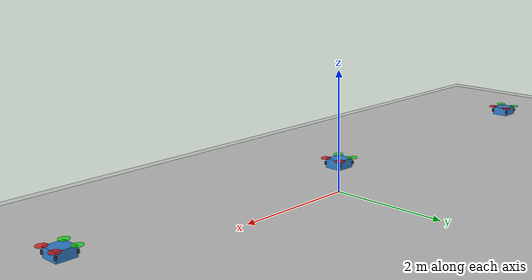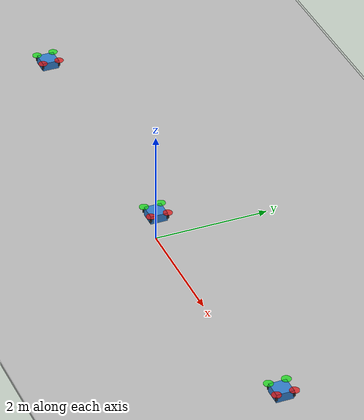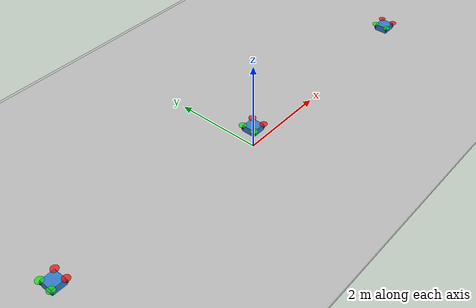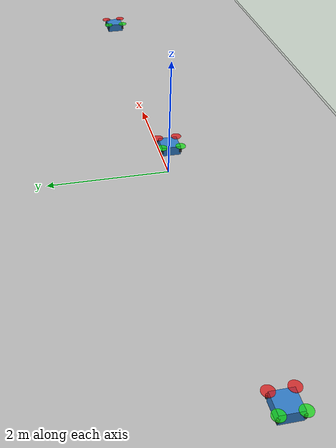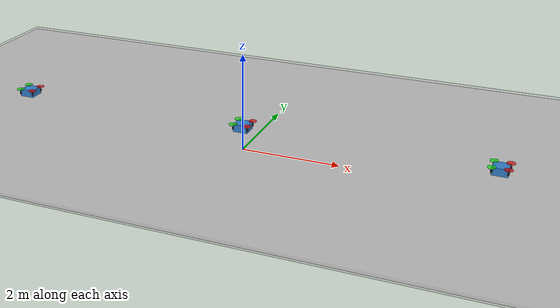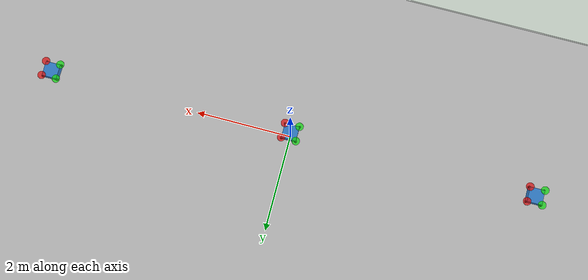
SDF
<?xml version="1.0"?>
<sdf version="1.8">
  <world name="uav_swarm_world">

    <!-- Physics configuration -->
    <physics name="1ms" type="ode">
      <max_step_size>0.001</max_step_size>
      <real_time_factor>1.0</real_time_factor>
      <real_time_update_rate>1000</real_time_update_rate>
    </physics>

    <!-- Required plugins for Ignition Gazebo -->
    <plugin
      filename="ignition-gazebo-physics-system"
      name="ignition::gazebo::systems::Physics">
    </plugin>

    <plugin
      filename="ignition-gazebo-user-commands-system"
      name="ignition::gazebo::systems::UserCommands">
    </plugin>

    <plugin
      filename="ignition-gazebo-scene-broadcaster-system"
      name="ignition::gazebo::systems::SceneBroadcaster">
    </plugin>

    <!-- REST Bridge Plugin for communication with Rust -->
    <plugin
      filename="libRestBridgePlugin.so"
      name="gazebo_plugins::RestBridgePlugin">
      <rust_api_url>http://localhost:8080</rust_api_url>
      <http_port>8092</http_port>
      <drone>drone_1</drone>
      <drone>drone_2</drone>
      <drone>drone_3</drone>
    </plugin>

    <!-- Lighting -->
    <light type="directional" name="sun">
      <cast_shadows>true</cast_shadows>
      <pose>0 0 10 0 0 0</pose>
      <diffuse>0.8 0.8 0.8 1</diffuse>
      <specular>0.2 0.2 0.2 1</specular>
      <attenuation>
        <range>1000</range>
        <constant>0.9</constant>
        <linear>0.01</linear>
        <quadratic>0.001</quadratic>
      </attenuation>
      <direction>-0.5 0.1 -0.9</direction>
    </light>

    <!-- Ground plane -->
    <model name="ground_plane">
      <static>true</static>
      <link name="link">
        <collision name="collision">
          <geometry>
            <plane>
              <normal>0 0 1</normal>
              <size>100 100</size>
            </plane>
          </geometry>
        </collision>
        <visual name="visual">
          <geometry>
            <plane>
              <normal>0 0 1</normal>
              <size>100 100</size>
            </plane>
          </geometry>
          <material>
            <ambient>0.8 0.8 0.8 1</ambient>
            <diffuse>0.8 0.8 0.8 1</diffuse>
            <specular>0.8 0.8 0.8 1</specular>
          </material>
        </visual>
      </link>
    </model>

    <!-- Grid for reference -->
    <model name="grid">
      <static>true</static>
      <link name="link">
        <visual name="visual">
          <cast_shadows>false</cast_shadows>
          <geometry>
            <plane>
              <normal>0 0 1</normal>
              <size>100 100</size>
            </plane>
          </geometry>
          <material>
            <ambient>0.5 0.5 0.5 0.3</ambient>
            <diffuse>0.7 0.7 0.7 0.4</diffuse>
          </material>
        </visual>
      </link>
    </model>

    <!-- Drone 1 (Red) -->
    <include>
      <uri>model://x3_uav</uri>
      <name>drone_1</name>
      <pose>0 0 0.5 0 0 0</pose>
    </include>

    <!-- Drone 2 (Green) -->
    <include>
      <uri>model://x3_uav</uri>
      <name>drone_2</name>
      <pose>5 0 0.5 0 0 0</pose>
    </include>

    <!-- Drone 3 (Blue) -->
    <include>
      <uri>model://x3_uav</uri>
      <name>drone_3</name>
      <pose>-5 0 0.5 0 0 0</pose>
    </include>

  </world>
</sdf>

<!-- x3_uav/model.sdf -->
<sdf version="1.8">
  <model name="x3_uav">
    <link name="base_link">
      <!-- Inertial properties for a small quadrotor -->
      <inertial>
        <mass>1.5</mass>
        <inertia>
          <ixx>0.03</ixx>
          <iyy>0.03</iyy>
          <izz>0.04</izz>
          <ixy>0</ixy>
          <ixz>0</ixz>
          <iyz>0</iyz>
        </inertia>
      </inertial>

      <!-- Main body collision -->
      <collision name="collision">
        <geometry>
          <box>
            <size>0.3 0.3 0.15</size>
          </box>
        </geometry>
      </collision>

      <!-- Main body visual -->
      <visual name="body_visual">
        <geometry>
          <box>
            <size>0.3 0.3 0.15</size>
          </box>
        </geometry>
        <material>
          <ambient>0.2 0.5 0.8 1</ambient>
          <diffuse>0.2 0.5 0.8 1</diffuse>
          <specular>0.5 0.5 0.5 1</specular>
        </material>
      </visual>

      <!-- Rotor arms -->
      <visual name="arm_front_left">
        <pose>0.15 0.15 0 0 0 0</pose>
        <geometry>
          <cylinder>
            <radius>0.02</radius>
            <length>0.05</length>
          </cylinder>
        </geometry>
        <material>
          <ambient>0.1 0.1 0.1 1</ambient>
          <diffuse>0.2 0.2 0.2 1</diffuse>
        </material>
      </visual>

      <visual name="arm_front_right">
        <pose>0.15 -0.15 0 0 0 0</pose>
        <geometry>
          <cylinder>
            <radius>0.02</radius>
            <length>0.05</length>
          </cylinder>
        </geometry>
        <material>
          <ambient>0.1 0.1 0.1 1</ambient>
          <diffuse>0.2 0.2 0.2 1</diffuse>
        </material>
      </visual>

      <visual name="arm_back_left">
        <pose>-0.15 0.15 0 0 0 0</pose>
        <geometry>
          <cylinder>
            <radius>0.02</radius>
            <length>0.05</length>
          </cylinder>
        </geometry>
        <material>
          <ambient>0.1 0.1 0.1 1</ambient>
          <diffuse>0.2 0.2 0.2 1</diffuse>
        </material>
      </visual>

      <visual name="arm_back_right">
        <pose>-0.15 -0.15 0 0 0 0</pose>
        <geometry>
          <cylinder>
            <radius>0.02</radius>
            <length>0.05</length>
          </cylinder>
        </geometry>
        <material>
          <ambient>0.1 0.1 0.1 1</ambient>
          <diffuse>0.2 0.2 0.2 1</diffuse>
        </material>
      </visual>

      <!-- Propellers -->
      <visual name="prop_front_left">
        <pose>0.15 0.15 0.08 0 0 0</pose>
        <geometry>
          <cylinder>
            <radius>0.08</radius>
            <length>0.01</length>
          </cylinder>
        </geometry>
        <material>
          <ambient>0.9 0.1 0.1 0.8</ambient>
          <diffuse>0.9 0.1 0.1 0.8</diffuse>
        </material>
      </visual>

      <visual name="prop_front_right">
        <pose>0.15 -0.15 0.08 0 0 0</pose>
        <geometry>
          <cylinder>
            <radius>0.08</radius>
            <length>0.01</length>
          </cylinder>
        </geometry>
        <material>
          <ambient>0.9 0.1 0.1 0.8</ambient>
          <diffuse>0.9 0.1 0.1 0.8</diffuse>
        </material>
      </visual>

      <visual name="prop_back_left">
        <pose>-0.15 0.15 0.08 0 0 0</pose>
        <geometry>
          <cylinder>
            <radius>0.08</radius>
            <length>0.01</length>
          </cylinder>
        </geometry>
        <material>
          <ambient>0.1 0.9 0.1 0.8</ambient>
          <diffuse>0.1 0.9 0.1 0.8</diffuse>
        </material>
      </visual>

      <visual name="prop_back_right">
        <pose>-0.15 -0.15 0.08 0 0 0</pose>
        <geometry>
          <cylinder>
            <radius>0.08</radius>
            <length>0.01</length>
          </cylinder>
        </geometry>
        <material>
          <ambient>0.1 0.9 0.1 0.8</ambient>
          <diffuse>0.1 0.9 0.1 0.8</diffuse>
        </material>
      </visual>
    </link>

    <!-- Plugin for applying forces/velocities -->
    <plugin
      filename="ignition-gazebo-apply-link-wrench-system"
      name="ignition::gazebo::systems::ApplyLinkWrench">
      <link_name>base_link</link_name>
    </plugin>

  </model>
</sdf>
